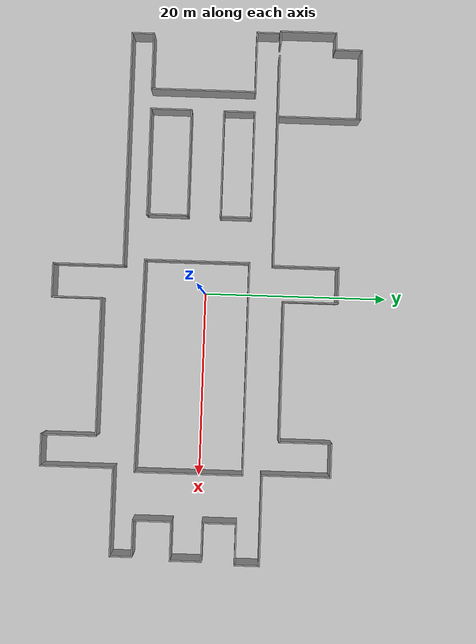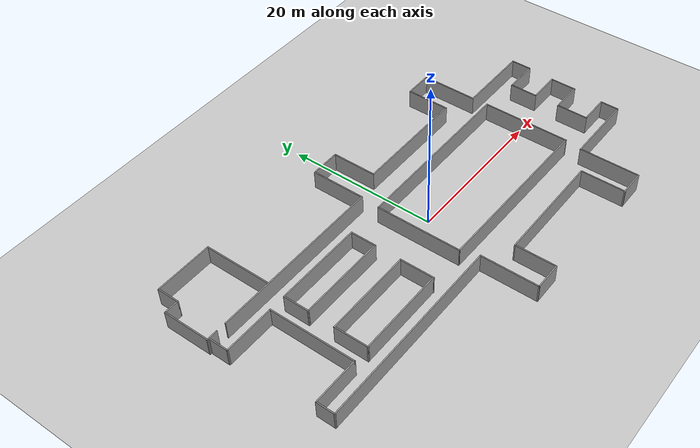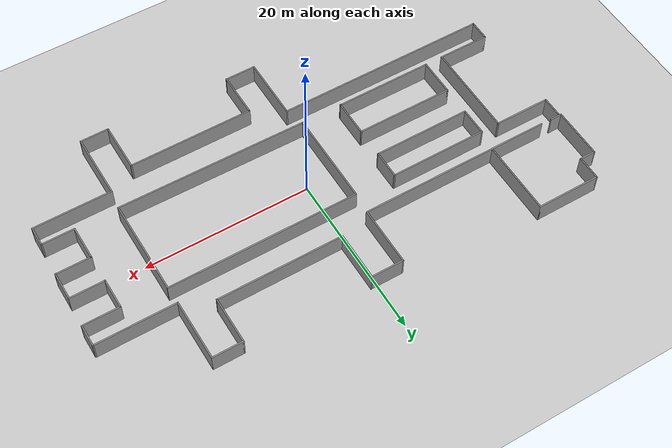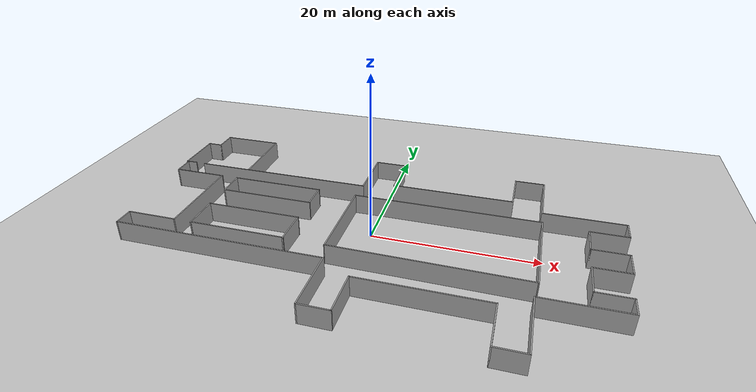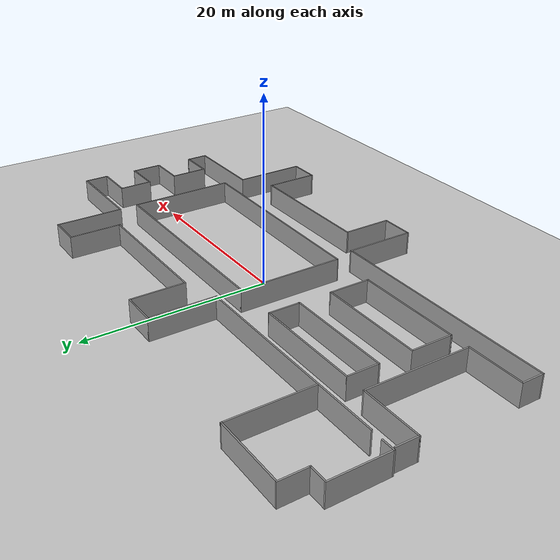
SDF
<?xml version='1.0' encoding='utf-8'?>
<sdf version="1.7">
  <world name="default">
    <light name="sun" type="directional">
      <cast_shadows>1</cast_shadows>
      <pose>0 0 10 0 -0 0</pose>
      <diffuse>0.8 0.8 0.8 1</diffuse>
      <specular>0.2 0.2 0.2 1</specular>
      <attenuation>
        <range>1000</range>
        <constant>0.9</constant>
        <linear>0.01</linear>
        <quadratic>0.001</quadratic>
      </attenuation>
      <direction>-0.5 0.1 -0.9</direction>
    </light>

    <include>
      <uri>model://ground_plane</uri>
    </include>

    <include>
      <uri>model://2101_wall</uri>
    </include>

    <gravity>0 0 -9.8</gravity>
    <atmosphere type="adiabatic" />
    <physics type="ode">
      <max_step_size>0.001</max_step_size>
      <real_time_factor>1</real_time_factor>
      <real_time_update_rate>1000</real_time_update_rate>
    </physics>
    <scene>
      <ambient>0.4 0.4 0.4 1</ambient>
      <background>0.7 0.7 0.7 1</background>
      <shadows>1</shadows>
    </scene>
  </world>
</sdf>

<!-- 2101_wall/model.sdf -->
<sdf version='1.7'>
  <model name='2101_wall'>
    <pose>-0.010242 -0.332797 0 0 -0 0</pose>
    <link name='Wall_0'>
      <collision name='Wall_0_Collision'>
        <geometry>
          <box>
            <size>1.5 0.15 2.5</size>
          </box>
        </geometry>
        <pose>0 0 1.25 0 -0 0</pose>
      </collision>
      <visual name='Wall_0_Visual'>
        <pose>0 0 1.25 0 -0 0</pose>
        <geometry>
          <box>
            <size>1.5 0.15 2.5</size>
          </box>
        </geometry>
        <material>
          <script>
            <uri>file://media/materials/scripts/gazebo.material</uri>
            <name>Gazebo/Grey</name>
          </script>
          <ambient>1 1 1 1</ambient>
        </material>
        <meta>
          <layer>0</layer>
        </meta>
      </visual>
      <pose>-28.3085 7.72241 0 0 -0 3.14159</pose>
    </link>
    <link name='Wall_1'>
      <collision name='Wall_1_Collision'>
        <geometry>
          <box>
            <size>6.25 0.15 2.5</size>
          </box>
        </geometry>
        <pose>0 0 1.25 0 -0 0</pose>
      </collision>
      <visual name='Wall_1_Visual'>
        <pose>0 0 1.25 0 -0 0</pose>
        <geometry>
          <box>
            <size>6.25 0.15 2.5</size>
          </box>
        </geometry>
        <material>
          <script>
            <uri>file://media/materials/scripts/gazebo.material</uri>
            <name>Gazebo/Grey</name>
          </script>
          <ambient>1 1 1 1</ambient>
        </material>
        <meta>
          <layer>0</layer>
        </meta>
      </visual>
      <pose>-28.9835 10.7724 0 0 -0 1.5708</pose>
    </link>
    <link name='Wall_10'>
      <collision name='Wall_10_Collision'>
        <geometry>
          <box>
            <size>6 0.15 2.5</size>
          </box>
        </geometry>
        <pose>0 0 1.25 0 -0 0</pose>
      </collision>
      <visual name='Wall_10_Visual'>
        <pose>0 0 1.25 0 -0 0</pose>
        <geometry>
          <box>
            <size>6 0.15 2.5</size>
          </box>
        </geometry>
        <material>
          <script>
            <uri>file://media/materials/scripts/gazebo.material</uri>
            <name>Gazebo/Grey</name>
          </script>
          <ambient>1 1 1 1</ambient>
        </material>
        <meta>
          <layer>0</layer>
        </meta>
      </visual>
      <pose>0.683549 11.8526 0 0 -0 -1.5708</pose>
    </link>
    <link name='Wall_11'>
      <collision name='Wall_11_Collision'>
        <geometry>
          <box>
            <size>15.25 0.15 2.5</size>
          </box>
        </geometry>
        <pose>0 0 1.25 0 -0 0</pose>
      </collision>
      <visual name='Wall_11_Visual'>
        <pose>0 0 1.25 0 -0 0</pose>
        <geometry>
          <box>
            <size>15.25 0.15 2.5</size>
          </box>
        </geometry>
        <material>
          <script>
            <uri>file://media/materials/scripts/gazebo.material</uri>
            <name>Gazebo/Grey</name>
          </script>
          <ambient>1 1 1 1</ambient>
        </material>
        <meta>
          <layer>0</layer>
        </meta>
      </visual>
      <pose>8.23355 8.92759 0 0 -0 0</pose>
    </link>
    <link name='Wall_12'>
      <collision name='Wall_12_Collision'>
        <geometry>
          <box>
            <size>5.75 0.15 2.5</size>
          </box>
        </geometry>
        <pose>0 0 1.25 0 -0 0</pose>
      </collision>
      <visual name='Wall_12_Visual'>
        <pose>0 0 1.25 0 -0 0</pose>
        <geometry>
          <box>
            <size>5.75 0.15 2.5</size>
          </box>
        </geometry>
        <material>
          <script>
            <uri>file://media/materials/scripts/gazebo.material</uri>
            <name>Gazebo/Grey</name>
          </script>
          <ambient>1 1 1 1</ambient>
        </material>
        <meta>
          <layer>0</layer>
        </meta>
      </visual>
      <pose>15.7835 11.7276 0 0 -0 1.5708</pose>
    </link>
    <link name='Wall_13'>
      <collision name='Wall_13_Collision'>
        <geometry>
          <box>
            <size>3.75 0.15 2.5</size>
          </box>
        </geometry>
        <pose>0 0 1.25 0 -0 0</pose>
      </collision>
      <visual name='Wall_13_Visual'>
        <pose>0 0 1.25 0 -0 0</pose>
        <geometry>
          <box>
            <size>3.75 0.15 2.5</size>
          </box>
        </geometry>
        <material>
          <script>
            <uri>file://media/materials/scripts/gazebo.material</uri>
            <name>Gazebo/Grey</name>
          </script>
          <ambient>1 1 1 1</ambient>
        </material>
        <meta>
          <layer>0</layer>
        </meta>
      </visual>
      <pose>17.5835 14.5276 0 0 -0 0</pose>
    </link>
    <link name='Wall_14'>
      <collision name='Wall_14_Collision'>
        <geometry>
          <box>
            <size>7.5 0.15 2.5</size>
          </box>
        </geometry>
        <pose>0 0 1.25 0 -0 0</pose>
      </collision>
      <visual name='Wall_14_Visual'>
        <pose>0 0 1.25 0 -0 0</pose>
        <geometry>
          <box>
            <size>7.5 0.15 2.5</size>
          </box>
        </geometry>
        <material>
          <script>
            <uri>file://media/materials/scripts/gazebo.material</uri>
            <name>Gazebo/Grey</name>
          </script>
          <ambient>1 1 1 1</ambient>
        </material>
        <meta>
          <layer>0</layer>
        </meta>
      </visual>
      <pose>19.3835 10.8526 0 0 -0 -1.5708</pose>
    </link>
    <link name='Wall_15'>
      <collision name='Wall_15_Collision'>
        <geometry>
          <box>
            <size>9.75 0.15 2.5</size>
          </box>
        </geometry>
        <pose>0 0 1.25 0 -0 0</pose>
      </collision>
      <visual name='Wall_15_Visual'>
        <pose>0 0 1.25 0 -0 0</pose>
        <geometry>
          <box>
            <size>9.75 0.15 2.5</size>
          </box>
        </geometry>
        <material>
          <script>
            <uri>file://media/materials/scripts/gazebo.material</uri>
            <name>Gazebo/Grey</name>
          </script>
          <ambient>1 1 1 1</ambient>
        </material>
        <meta>
          <layer>0</layer>
        </meta>
      </visual>
      <pose>24.1836 7.17759 0 0 -0 0</pose>
    </link>
    <link name='Wall_16'>
      <collision name='Wall_16_Collision'>
        <geometry>
          <box>
            <size>2.75 0.15 2.5</size>
          </box>
        </geometry>
        <pose>0 0 1.25 0 -0 0</pose>
      </collision>
      <visual name='Wall_16_Visual'>
        <pose>0 0 1.25 0 -0 0</pose>
        <geometry>
          <box>
            <size>2.75 0.15 2.5</size>
          </box>
        </geometry>
        <material>
          <script>
            <uri>file://media/materials/scripts/gazebo.material</uri>
            <name>Gazebo/Grey</name>
          </script>
          <ambient>1 1 1 1</ambient>
        </material>
        <meta>
          <layer>0</layer>
        </meta>
      </visual>
      <pose>28.9835 5.87759 0 0 -0 -1.5708</pose>
    </link>
    <link name='Wall_17'>
      <collision name='Wall_17_Collision'>
        <geometry>
          <box>
            <size>4.5 0.15 2.5</size>
          </box>
        </geometry>
        <pose>0 0 1.25 0 -0 0</pose>
      </collision>
      <visual name='Wall_17_Visual'>
        <pose>0 0 1.25 0 -0 0</pose>
        <geometry>
          <box>
            <size>4.5 0.15 2.5</size>
          </box>
        </geometry>
        <material>
          <script>
            <uri>file://media/materials/scripts/gazebo.material</uri>
            <name>Gazebo/Grey</name>
          </script>
          <ambient>1 1 1 1</ambient>
        </material>
        <meta>
          <layer>0</layer>
        </meta>
      </visual>
      <pose>26.8086 4.57759 0 0 -0 3.14159</pose>
    </link>
    <link name='Wall_18'>
      <collision name='Wall_18_Collision'>
        <geometry>
          <box>
            <size>3.75 0.15 2.5</size>
          </box>
        </geometry>
        <pose>0 0 1.25 0 -0 0</pose>
      </collision>
      <visual name='Wall_18_Visual'>
        <pose>0 0 1.25 0 -0 0</pose>
        <geometry>
          <box>
            <size>3.75 0.15 2.5</size>
          </box>
        </geometry>
        <material>
          <script>
            <uri>file://media/materials/scripts/gazebo.material</uri>
            <name>Gazebo/Grey</name>
          </script>
          <ambient>1 1 1 1</ambient>
        </material>
        <meta>
          <layer>0</layer>
        </meta>
      </visual>
      <pose>24.6335 2.77759 0 0 -0 -1.5708</pose>
    </link>
    <link name='Wall_19'>
      <collision name='Wall_19_Collision'>
        <geometry>
          <box>
            <size>4.25 0.15 2.5</size>
          </box>
        </geometry>
        <pose>0 0 1.25 0 -0 0</pose>
      </collision>
      <visual name='Wall_19_Visual'>
        <pose>0 0 1.25 0 -0 0</pose>
        <geometry>
          <box>
            <size>4.25 0.15 2.5</size>
          </box>
        </geometry>
        <material>
          <script>
            <uri>file://media/materials/scripts/gazebo.material</uri>
            <name>Gazebo/Grey</name>
          </script>
          <ambient>1 1 1 1</ambient>
        </material>
        <meta>
          <layer>0</layer>
        </meta>
      </visual>
      <pose>26.6836 0.977589 0 0 -0 0</pose>
    </link>
    <link name='Wall_2'>
      <collision name='Wall_2_Collision'>
        <geometry>
          <box>
            <size>2 0.15 2.5</size>
          </box>
        </geometry>
        <pose>0 0 1.25 0 -0 0</pose>
      </collision>
      <visual name='Wall_2_Visual'>
        <pose>0 0 1.25 0 -0 0</pose>
        <geometry>
          <box>
            <size>2 0.15 2.5</size>
          </box>
        </geometry>
        <material>
          <script>
            <uri>file://media/materials/scripts/gazebo.material</uri>
            <name>Gazebo/Grey</name>
          </script>
          <ambient>1 1 1 1</ambient>
        </material>
        <meta>
          <layer>0</layer>
        </meta>
      </visual>
      <pose>-28.0585 13.8224 0 0 -0 0</pose>
    </link>
    <link name='Wall_20'>
      <collision name='Wall_20_Collision'>
        <geometry>
          <box>
            <size>3.5 0.15 2.5</size>
          </box>
        </geometry>
        <pose>0 0 1.25 0 -0 0</pose>
      </collision>
      <visual name='Wall_20_Visual'>
        <pose>0 0 1.25 0 -0 0</pose>
        <geometry>
          <box>
            <size>3.5 0.15 2.5</size>
          </box>
        </geometry>
        <material>
          <script>
            <uri>file://media/materials/scripts/gazebo.material</uri>
            <name>Gazebo/Grey</name>
          </script>
          <ambient>1 1 1 1</ambient>
        </material>
        <meta>
          <layer>0</layer>
        </meta>
      </visual>
      <pose>28.7335 -0.697412 0 0 -0 -1.5708</pose>
    </link>
    <link name='Wall_21'>
      <collision name='Wall_21_Collision'>
        <geometry>
          <box>
            <size>4.25 0.15 2.5</size>
          </box>
        </geometry>
        <pose>0 0 1.25 0 -0 0</pose>
      </collision>
      <visual name='Wall_21_Visual'>
        <pose>0 0 1.25 0 -0 0</pose>
        <geometry>
          <box>
            <size>4.25 0.15 2.5</size>
          </box>
        </geometry>
        <material>
          <script>
            <uri>file://media/materials/scripts/gazebo.material</uri>
            <name>Gazebo/Grey</name>
          </script>
          <ambient>1 1 1 1</ambient>
        </material>
        <meta>
          <layer>0</layer>
        </meta>
      </visual>
      <pose>26.6836 -2.37241 0 0 -0 3.14159</pose>
    </link>
    <link name='Wall_22'>
      <collision name='Wall_22_Collision'>
        <geometry>
          <box>
            <size>4.25 0.15 2.5</size>
          </box>
        </geometry>
        <pose>0 0 1.25 0 -0 0</pose>
      </collision>
      <visual name='Wall_22_Visual'>
        <pose>0 0 1.25 0 -0 0</pose>
        <geometry>
          <box>
            <size>4.25 0.15 2.5</size>
          </box>
        </geometry>
        <material>
          <script>
            <uri>file://media/materials/scripts/gazebo.material</uri>
            <name>Gazebo/Grey</name>
          </script>
          <ambient>1 1 1 1</ambient>
        </material>
        <meta>
          <layer>0</layer>
        </meta>
      </visual>
      <pose>24.6335 -4.42241 0 0 -0 -1.5708</pose>
    </link>
    <link name='Wall_23'>
      <collision name='Wall_23_Collision'>
        <geometry>
          <box>
            <size>4 0.15 2.5</size>
          </box>
        </geometry>
        <pose>0 0 1.25 0 -0 0</pose>
      </collision>
      <visual name='Wall_23_Visual'>
        <pose>0 0 1.25 0 -0 0</pose>
        <geometry>
          <box>
            <size>4 0.15 2.5</size>
          </box>
        </geometry>
        <material>
          <script>
            <uri>file://media/materials/scripts/gazebo.material</uri>
            <name>Gazebo/Grey</name>
          </script>
          <ambient>1 1 1 1</ambient>
        </material>
        <meta>
          <layer>0</layer>
        </meta>
      </visual>
      <pose>26.5586 -6.47241 0 0 -0 0</pose>
    </link>
    <link name='Wall_24'>
      <collision name='Wall_24_Collision'>
        <geometry>
          <box>
            <size>2.5 0.15 2.5</size>
          </box>
        </geometry>
        <pose>0 0 1.25 0 -0 0</pose>
      </collision>
      <visual name='Wall_24_Visual'>
        <pose>0 0 1.25 0 -0 0</pose>
        <geometry>
          <box>
            <size>2.5 0.15 2.5</size>
          </box>
        </geometry>
        <material>
          <script>
            <uri>file://media/materials/scripts/gazebo.material</uri>
            <name>Gazebo/Grey</name>
          </script>
          <ambient>1 1 1 1</ambient>
        </material>
        <meta>
          <layer>0</layer>
        </meta>
      </visual>
      <pose>28.4835 -7.64741 0 0 -0 -1.5708</pose>
    </link>
    <link name='Wall_25'>
      <collision name='Wall_25_Collision'>
        <geometry>
          <box>
            <size>9.5 0.15 2.5</size>
          </box>
        </geometry>
        <pose>0 0 1.25 0 -0 0</pose>
      </collision>
      <visual name='Wall_25_Visual'>
        <pose>0 0 1.25 0 -0 0</pose>
        <geometry>
          <box>
            <size>9.5 0.15 2.5</size>
          </box>
        </geometry>
        <material>
          <script>
            <uri>file://media/materials/scripts/gazebo.material</uri>
            <name>Gazebo/Grey</name>
          </script>
          <ambient>1 1 1 1</ambient>
        </material>
        <meta>
          <layer>0</layer>
        </meta>
      </visual>
      <pose>23.8086 -8.82241 0 0 -0 3.14159</pose>
    </link>
    <link name='Wall_26'>
      <collision name='Wall_26_Collision'>
        <geometry>
          <box>
            <size>8 0.15 2.5</size>
          </box>
        </geometry>
        <pose>0 0 1.25 0 -0 0</pose>
      </collision>
      <visual name='Wall_26_Visual'>
        <pose>0 0 1.25 0 -0 0</pose>
        <geometry>
          <box>
            <size>8 0.15 2.5</size>
          </box>
        </geometry>
        <material>
          <script>
            <uri>file://media/materials/scripts/gazebo.material</uri>
            <name>Gazebo/Grey</name>
          </script>
          <ambient>1 1 1 1</ambient>
        </material>
        <meta>
          <layer>0</layer>
        </meta>
      </visual>
      <pose>19.1335 -12.7474 0 0 -0 -1.5708</pose>
    </link>
    <link name='Wall_27'>
      <collision name='Wall_27_Collision'>
        <geometry>
          <box>
            <size>3.5 0.15 2.5</size>
          </box>
        </geometry>
        <pose>0 0 1.25 0 -0 0</pose>
      </collision>
      <visual name='Wall_27_Visual'>
        <pose>0 0 1.25 0 -0 0</pose>
        <geometry>
          <box>
            <size>3.5 0.15 2.5</size>
          </box>
        </geometry>
        <material>
          <script>
            <uri>file://media/materials/scripts/gazebo.material</uri>
            <name>Gazebo/Grey</name>
          </script>
          <ambient>1 1 1 1</ambient>
        </material>
        <meta>
          <layer>0</layer>
        </meta>
      </visual>
      <pose>17.4585 -16.6724 0 0 -0 3.14159</pose>
    </link>
    <link name='Wall_28'>
      <collision name='Wall_28_Collision'>
        <geometry>
          <box>
            <size>6 0.15 2.5</size>
          </box>
        </geometry>
        <pose>0 0 1.25 0 -0 0</pose>
      </collision>
      <visual name='Wall_28_Visual'>
        <pose>0 0 1.25 0 -0 0</pose>
        <geometry>
          <box>
            <size>6 0.15 2.5</size>
          </box>
        </geometry>
        <material>
          <script>
            <uri>file://media/materials/scripts/gazebo.material</uri>
            <name>Gazebo/Grey</name>
          </script>
          <ambient>1 1 1 1</ambient>
        </material>
        <meta>
          <layer>0</layer>
        </meta>
      </visual>
      <pose>15.7835 -13.7474 0 0 -0 1.5708</pose>
    </link>
    <link name='Wall_29'>
      <collision name='Wall_29_Collision'>
        <geometry>
          <box>
            <size>15 0.15 2.5</size>
          </box>
        </geometry>
        <pose>0 0 1.25 0 -0 0</pose>
      </collision>
      <visual name='Wall_29_Visual'>
        <pose>0 0 1.25 0 -0 0</pose>
        <geometry>
          <box>
            <size>15 0.15 2.5</size>
          </box>
        </geometry>
        <material>
          <script>
            <uri>file://media/materials/scripts/gazebo.material</uri>
            <name>Gazebo/Grey</name>
          </script>
          <ambient>1 1 1 1</ambient>
        </material>
        <meta>
          <layer>0</layer>
        </meta>
      </visual>
      <pose>8.35855 -10.8224 0 0 -0 3.14159</pose>
    </link>
    <link name='Wall_3'>
      <collision name='Wall_3_Collision'>
        <geometry>
          <box>
            <size>3 0.15 2.5</size>
          </box>
        </geometry>
        <pose>0 0 1.25 0 -0 0</pose>
      </collision>
      <visual name='Wall_3_Visual'>
        <pose>0 0 1.25 0 -0 0</pose>
        <geometry>
          <box>
            <size>3 0.15 2.5</size>
          </box>
        </geometry>
        <material>
          <script>
            <uri>file://media/materials/scripts/gazebo.material</uri>
            <name>Gazebo/Grey</name>
          </script>
          <ambient>1 1 1 1</ambient>
        </material>
        <meta>
          <layer>0</layer>
        </meta>
      </visual>
      <pose>-27.1335 15.2474 0 0 -0 1.5708</pose>
    </link>
    <link name='Wall_30'>
      <collision name='Wall_30_Collision'>
        <geometry>
          <box>
            <size>5.5 0.15 2.5</size>
          </box>
        </geometry>
        <pose>0 0 1.25 0 -0 0</pose>
      </collision>
      <visual name='Wall_30_Visual'>
        <pose>0 0 1.25 0 -0 0</pose>
        <geometry>
          <box>
            <size>5.5 0.15 2.5</size>
          </box>
        </geometry>
        <material>
          <script>
            <uri>file://media/materials/scripts/gazebo.material</uri>
            <name>Gazebo/Grey</name>
          </script>
          <ambient>1 1 1 1</ambient>
        </material>
        <meta>
          <layer>0</layer>
        </meta>
      </visual>
      <pose>0.933549 -13.4974 0 0 -0 -1.5708</pose>
    </link>
    <link name='Wall_31'>
      <collision name='Wall_31_Collision'>
        <geometry>
          <box>
            <size>3.75 0.15 2.5</size>
          </box>
        </geometry>
        <pose>0 0 1.25 0 -0 0</pose>
      </collision>
      <visual name='Wall_31_Visual'>
        <pose>0 0 1.25 0 -0 0</pose>
        <geometry>
          <box>
            <size>3.75 0.15 2.5</size>
          </box>
        </geometry>
        <material>
          <script>
            <uri>file://media/materials/scripts/gazebo.material</uri>
            <name>Gazebo/Grey</name>
          </script>
          <ambient>1 1 1 1</ambient>
        </material>
        <meta>
          <layer>0</layer>
        </meta>
      </visual>
      <pose>-0.866451 -16.1724 0 0 -0 3.14159</pose>
    </link>
    <link name='Wall_32'>
      <collision name='Wall_32_Collision'>
        <geometry>
          <box>
            <size>7.75 0.15 2.5</size>
          </box>
        </geometry>
        <pose>0 0 1.25 0 -0 0</pose>
      </collision>
      <visual name='Wall_32_Visual'>
        <pose>0 0 1.25 0 -0 0</pose>
        <geometry>
          <box>
            <size>7.75 0.15 2.5</size>
          </box>
        </geometry>
        <material>
          <script>
            <uri>file://media/materials/scripts/gazebo.material</uri>
            <name>Gazebo/Grey</name>
          </script>
          <ambient>1 1 1 1</ambient>
        </material>
        <meta>
          <layer>0</layer>
        </meta>
      </visual>
      <pose>-2.66645 -12.3724 0 0 -0 1.5708</pose>
    </link>
    <link name='Wall_33'>
      <collision name='Wall_33_Collision'>
        <geometry>
          <box>
            <size>25.75 0.15 2.5</size>
          </box>
        </geometry>
        <pose>0 0 1.25 0 -0 0</pose>
      </collision>
      <visual name='Wall_33_Visual'>
        <pose>0 0 1.25 0 -0 0</pose>
        <geometry>
          <box>
            <size>25.75 0.15 2.5</size>
          </box>
        </geometry>
        <material>
          <script>
            <uri>file://media/materials/scripts/gazebo.material</uri>
            <name>Gazebo/Grey</name>
          </script>
          <ambient>1 1 1 1</ambient>
        </material>
        <meta>
          <layer>0</layer>
        </meta>
      </visual>
      <pose>-15.4665 -8.57241 0 0 -0 3.14159</pose>
    </link>
    <link name='Wall_34'>
      <collision name='Wall_34_Collision'>
        <geometry>
          <box>
            <size>2.5 0.15 2.5</size>
          </box>
        </geometry>
        <pose>0 0 1.25 0 -0 0</pose>
      </collision>
      <visual name='Wall_34_Visual'>
        <pose>0 0 1.25 0 -0 0</pose>
        <geometry>
          <box>
            <size>2.5 0.15 2.5</size>
          </box>
        </geometry>
        <material>
          <script>
            <uri>file://media/materials/scripts/gazebo.material</uri>
            <name>Gazebo/Grey</name>
          </script>
          <ambient>1 1 1 1</ambient>
        </material>
        <meta>
          <layer>0</layer>
        </meta>
      </visual>
      <pose>-28.2665 -7.39741 0 0 -0 1.5708</pose>
    </link>
    <link name='Wall_35'>
      <collision name='Wall_35_Collision'>
        <geometry>
          <box>
            <size>6.25 0.15 2.5</size>
          </box>
        </geometry>
        <pose>0 0 1.25 0 -0 0</pose>
      </collision>
      <visual name='Wall_35_Visual'>
        <pose>0 0 1.25 0 -0 0</pose>
        <geometry>
          <box>
            <size>6.25 0.15 2.5</size>
          </box>
        </geometry>
        <material>
          <script>
            <uri>file://media/materials/scripts/gazebo.material</uri>
            <name>Gazebo/Grey</name>
          </script>
          <ambient>1 1 1 1</ambient>
        </material>
        <meta>
          <layer>0</layer>
        </meta>
      </visual>
      <pose>-25.2165 -6.22241 0 0 -0 0</pose>
    </link>
    <link name='Wall_36'>
      <collision name='Wall_36_Collision'>
        <geometry>
          <box>
            <size>11.5 0.15 2.5</size>
          </box>
        </geometry>
        <pose>0 0 1.25 0 -0 0</pose>
      </collision>
      <visual name='Wall_36_Visual'>
        <pose>0 0 1.25 0 -0 0</pose>
        <geometry>
          <box>
            <size>11.5 0.15 2.5</size>
          </box>
        </geometry>
        <material>
          <script>
            <uri>file://media/materials/scripts/gazebo.material</uri>
            <name>Gazebo/Grey</name>
          </script>
          <ambient>1 1 1 1</ambient>
        </material>
        <meta>
          <layer>0</layer>
        </meta>
      </visual>
      <pose>-22.1665 -0.547412 0 0 -0 1.5708</pose>
    </link>
    <link name='Wall_37'>
      <collision name='Wall_37_Collision'>
        <geometry>
          <box>
            <size>6.75 0.15 2.5</size>
          </box>
        </geometry>
        <pose>0 0 1.25 0 -0 0</pose>
      </collision>
      <visual name='Wall_37_Visual'>
        <pose>0 0 1.25 0 -0 0</pose>
        <geometry>
          <box>
            <size>6.75 0.15 2.5</size>
          </box>
        </geometry>
        <material>
          <script>
            <uri>file://media/materials/scripts/gazebo.material</uri>
            <name>Gazebo/Grey</name>
          </script>
          <ambient>1 1 1 1</ambient>
        </material>
        <meta>
          <layer>0</layer>
        </meta>
      </visual>
      <pose>-25.4665 5.12759 0 0 -0 3.14159</pose>
    </link>
    <link name='Wall_38'>
      <collision name='Wall_38_Collision'>
        <geometry>
          <box>
            <size>2.5 0.15 2.5</size>
          </box>
        </geometry>
        <pose>0 0 1.25 0 -0 0</pose>
      </collision>
      <visual name='Wall_38_Visual'>
        <pose>0 0 1.25 0 -0 0</pose>
        <geometry>
          <box>
            <size>2.5 0.15 2.5</size>
          </box>
        </geometry>
        <material>
          <script>
            <uri>file://media/materials/scripts/gazebo.material</uri>
            <name>Gazebo/Grey</name>
          </script>
          <ambient>1 1 1 1</ambient>
        </material>
        <meta>
          <layer>0</layer>
        </meta>
      </visual>
      <pose>-28.7665 6.30259 0 0 -0 1.5708</pose>
    </link>
    <link name='Wall_4'>
      <collision name='Wall_4_Collision'>
        <geometry>
          <box>
            <size>7.75 0.15 2.5</size>
          </box>
        </geometry>
        <pose>0 0 1.25 0 -0 0</pose>
      </collision>
      <visual name='Wall_4_Visual'>
        <pose>0 0 1.25 0 -0 0</pose>
        <geometry>
          <box>
            <size>7.75 0.15 2.5</size>
          </box>
        </geometry>
        <material>
          <script>
            <uri>file://media/materials/scripts/gazebo.material</uri>
            <name>Gazebo/Grey</name>
          </script>
          <ambient>1 1 1 1</ambient>
        </material>
        <meta>
          <layer>0</layer>
        </meta>
      </visual>
      <pose>-23.3335 16.6724 0 0 -0 0</pose>
    </link>
    <link name='Wall_40'>
      <collision name='Wall_40_Collision'>
        <geometry>
          <box>
            <size>11.75 0.15 2.5</size>
          </box>
        </geometry>
        <pose>0 0 1.25 0 -0 0</pose>
      </collision>
      <visual name='Wall_40_Visual'>
        <pose>0 0 1.25 0 -0 0</pose>
        <geometry>
          <box>
            <size>11.75 0.15 2.5</size>
          </box>
        </geometry>
        <material>
          <script>
            <uri>file://media/materials/scripts/gazebo.material</uri>
            <name>Gazebo/Grey</name>
          </script>
          <ambient>1 1 1 1</ambient>
        </material>
        <meta>
          <layer>0</layer>
        </meta>
      </visual>
      <pose>-14.128 5.12978 0 0 -0 0</pose>
    </link>
    <link name='Wall_41'>
      <collision name='Wall_41_Collision'>
        <geometry>
          <box>
            <size>3.5 0.15 2.5</size>
          </box>
        </geometry>
        <pose>0 0 1.25 0 -0 0</pose>
      </collision>
      <visual name='Wall_41_Visual'>
        <pose>0 0 1.25 0 -0 0</pose>
        <geometry>
          <box>
            <size>3.5 0.15 2.5</size>
          </box>
        </geometry>
        <material>
          <script>
            <uri>file://media/materials/scripts/gazebo.material</uri>
            <name>Gazebo/Grey</name>
          </script>
          <ambient>1 1 1 1</ambient>
        </material>
        <meta>
          <layer>0</layer>
        </meta>
      </visual>
      <pose>-8.32804 3.45478 0 0 -0 -1.5708</pose>
    </link>
    <link name='Wall_42'>
      <collision name='Wall_42_Collision'>
        <geometry>
          <box>
            <size>11.75 0.15 2.5</size>
          </box>
        </geometry>
        <pose>0 0 1.25 0 -0 0</pose>
      </collision>
      <visual name='Wall_42_Visual'>
        <pose>0 0 1.25 0 -0 0</pose>
        <geometry>
          <box>
            <size>11.75 0.15 2.5</size>
          </box>
        </geometry>
        <material>
          <script>
            <uri>file://media/materials/scripts/gazebo.material</uri>
            <name>Gazebo/Grey</name>
          </script>
          <ambient>1 1 1 1</ambient>
        </material>
        <meta>
          <layer>0</layer>
        </meta>
      </visual>
      <pose>-14.128 1.77978 0 0 -0 3.14159</pose>
    </link>
    <link name='Wall_43'>
      <collision name='Wall_43_Collision'>
        <geometry>
          <box>
            <size>3.5 0.15 2.5</size>
          </box>
        </geometry>
        <pose>0 0 1.25 0 -0 0</pose>
      </collision>
      <visual name='Wall_43_Visual'>
        <pose>0 0 1.25 0 -0 0</pose>
        <geometry>
          <box>
            <size>3.5 0.15 2.5</size>
          </box>
        </geometry>
        <material>
          <script>
            <uri>file://media/materials/scripts/gazebo.material</uri>
            <name>Gazebo/Grey</name>
          </script>
          <ambient>1 1 1 1</ambient>
        </material>
        <meta>
          <layer>0</layer>
        </meta>
      </visual>
      <pose>-19.928 3.45478 0 0 -0 1.5708</pose>
    </link>
    <link name='Wall_45'>
      <collision name='Wall_45_Collision'>
        <geometry>
          <box>
            <size>11.75 0.15 2.5</size>
          </box>
        </geometry>
        <pose>0 0 1.25 0 -0 0</pose>
      </collision>
      <visual name='Wall_45_Visual'>
        <pose>0 0 1.25 0 -0 0</pose>
        <geometry>
          <box>
            <size>11.75 0.15 2.5</size>
          </box>
        </geometry>
        <material>
          <script>
            <uri>file://media/materials/scripts/gazebo.material</uri>
            <name>Gazebo/Grey</name>
          </script>
          <ambient>1 1 1 1</ambient>
        </material>
        <meta>
          <layer>0</layer>
        </meta>
      </visual>
      <pose>-14.1579 -1.79677 0 0 -0 0</pose>
    </link>
    <link name='Wall_46'>
      <collision name='Wall_46_Collision'>
        <geometry>
          <box>
            <size>4.59696 0.15 2.5</size>
          </box>
        </geometry>
        <pose>0 0 1.25 0 -0 0</pose>
      </collision>
      <visual name='Wall_46_Visual'>
        <pose>0 0 1.25 0 -0 0</pose>
        <geometry>
          <box>
            <size>4.59696 0.15 2.5</size>
          </box>
        </geometry>
        <material>
          <script>
            <uri>file://media/materials/scripts/gazebo.material</uri>
            <name>Gazebo/Grey</name>
          </script>
          <ambient>1 1 1 1</ambient>
        </material>
        <meta>
          <layer>0</layer>
        </meta>
      </visual>
      <pose>-8.35793 -4.02025 0 0 -0 -1.5708</pose>
    </link>
    <link name='Wall_47'>
      <collision name='Wall_47_Collision'>
        <geometry>
          <box>
            <size>11.75 0.15 2.5</size>
          </box>
        </geometry>
        <pose>0 0 1.25 0 -0 0</pose>
      </collision>
      <visual name='Wall_47_Visual'>
        <pose>0 0 1.25 0 -0 0</pose>
        <geometry>
          <box>
            <size>11.75 0.15 2.5</size>
          </box>
        </geometry>
        <material>
          <script>
            <uri>file://media/materials/scripts/gazebo.material</uri>
            <name>Gazebo/Grey</name>
          </script>
          <ambient>1 1 1 1</ambient>
        </material>
        <meta>
          <layer>0</layer>
        </meta>
      </visual>
      <pose>-14.1579 -6.2206 0 0 -0 3.14159</pose>
    </link>
    <link name='Wall_48'>
      <collision name='Wall_48_Collision'>
        <geometry>
          <box>
            <size>4.59696 0.15 2.5</size>
          </box>
        </geometry>
        <pose>0 0 1.25 0 -0 0</pose>
      </collision>
      <visual name='Wall_48_Visual'>
        <pose>0 0 1.25 0 -0 0</pose>
        <geometry>
          <box>
            <size>4.59696 0.15 2.5</size>
          </box>
        </geometry>
        <material>
          <script>
            <uri>file://media/materials/scripts/gazebo.material</uri>
            <name>Gazebo/Grey</name>
          </script>
          <ambient>1 1 1 1</ambient>
        </material>
        <meta>
          <layer>0</layer>
        </meta>
      </visual>
      <pose>-19.9579 -4.02025 0 0 -0 1.5708</pose>
    </link>
    <link name='Wall_5'>
      <collision name='Wall_5_Collision'>
        <geometry>
          <box>
            <size>9 0.15 2.5</size>
          </box>
        </geometry>
        <pose>0 0 1.25 0 -0 0</pose>
      </collision>
      <visual name='Wall_5_Visual'>
        <pose>0 0 1.25 0 -0 0</pose>
        <geometry>
          <box>
            <size>9 0.15 2.5</size>
          </box>
        </geometry>
        <material>
          <script>
            <uri>file://media/materials/scripts/gazebo.material</uri>
            <name>Gazebo/Grey</name>
          </script>
          <ambient>1 1 1 1</ambient>
        </material>
        <meta>
          <layer>0</layer>
        </meta>
      </visual>
      <pose>-19.5335 12.2474 0 0 -0 -1.5708</pose>
    </link>
    <link name='Wall_50'>
      <collision name='Wall_50_Collision'>
        <geometry>
          <box>
            <size>23 0.15 2.5</size>
          </box>
        </geometry>
        <pose>0 0 1.25 0 -0 0</pose>
      </collision>
      <visual name='Wall_50_Visual'>
        <pose>0 0 1.25 0 -0 0</pose>
        <geometry>
          <box>
            <size>23 0.15 2.5</size>
          </box>
        </geometry>
        <material>
          <script>
            <uri>file://media/materials/scripts/gazebo.material</uri>
            <name>Gazebo/Grey</name>
          </script>
          <ambient>1 1 1 1</ambient>
        </material>
        <meta>
          <layer>0</layer>
        </meta>
      </visual>
      <pose>8.04025 5.08796 0 0 -0 0</pose>
    </link>
    <link name='Wall_51'>
      <collision name='Wall_51_Collision'>
        <geometry>
          <box>
            <size>11.75 0.15 2.5</size>
          </box>
        </geometry>
        <pose>0 0 1.25 0 -0 0</pose>
      </collision>
      <visual name='Wall_51_Visual'>
        <pose>0 0 1.25 0 -0 0</pose>
        <geometry>
          <box>
            <size>11.75 0.15 2.5</size>
          </box>
        </geometry>
        <material>
          <script>
            <uri>file://media/materials/scripts/gazebo.material</uri>
            <name>Gazebo/Grey</name>
          </script>
          <ambient>1 1 1 1</ambient>
        </material>
        <meta>
          <layer>0</layer>
        </meta>
      </visual>
      <pose>19.4652 -0.712044 0 0 -0 -1.5708</pose>
    </link>
    <link name='Wall_52'>
      <collision name='Wall_52_Collision'>
        <geometry>
          <box>
            <size>23.0014 0.15 2.5</size>
          </box>
        </geometry>
        <pose>0 0 1.25 0 -0 0</pose>
      </collision>
      <visual name='Wall_52_Visual'>
        <pose>0 0 1.25 0 -0 0</pose>
        <geometry>
          <box>
            <size>23.0014 0.15 2.5</size>
          </box>
        </geometry>
        <material>
          <script>
            <uri>file://media/materials/scripts/gazebo.material</uri>
            <name>Gazebo/Grey</name>
          </script>
          <ambient>1 1 1 1</ambient>
        </material>
        <meta>
          <layer>0</layer>
        </meta>
      </visual>
      <pose>8.04025 -6.38704 0 0 -0 3.13065</pose>
    </link>
    <link name='Wall_53'>
      <collision name='Wall_53_Collision'>
        <geometry>
          <box>
            <size>11.5 0.15 2.5</size>
          </box>
        </geometry>
        <pose>0 0 1.25 0 -0 0</pose>
      </collision>
      <visual name='Wall_53_Visual'>
        <pose>0 0 1.25 0 -0 0</pose>
        <geometry>
          <box>
            <size>11.5 0.15 2.5</size>
          </box>
        </geometry>
        <material>
          <script>
            <uri>file://media/materials/scripts/gazebo.material</uri>
            <name>Gazebo/Grey</name>
          </script>
          <ambient>1 1 1 1</ambient>
        </material>
        <meta>
          <layer>0</layer>
        </meta>
      </visual>
      <pose>-3.38475 -0.587044 0 0 -0 1.5708</pose>
    </link>
    <link name='Wall_7'>
      <collision name='Wall_7_Collision'>
        <geometry>
          <box>
            <size>23.25 0.15 2.5</size>
          </box>
        </geometry>
        <pose>0 0 1.25 0 -0 0</pose>
      </collision>
      <visual name='Wall_7_Visual'>
        <pose>0 0 1.25 0 -0 0</pose>
        <geometry>
          <box>
            <size>23.25 0.15 2.5</size>
          </box>
        </geometry>
        <material>
          <script>
            <uri>file://media/materials/scripts/gazebo.material</uri>
            <name>Gazebo/Grey</name>
          </script>
          <ambient>1 1 1 1</ambient>
        </material>
        <meta>
          <layer>0</layer>
        </meta>
      </visual>
      <pose>-14.7165 7.67759 0 0 -0 0</pose>
    </link>
    <link name='Wall_8'>
      <collision name='Wall_8_Collision'>
        <geometry>
          <box>
            <size>7.25 0.15 2.5</size>
          </box>
        </geometry>
        <pose>0 0 1.25 0 -0 0</pose>
      </collision>
      <visual name='Wall_8_Visual'>
        <pose>0 0 1.25 0 -0 0</pose>
        <geometry>
          <box>
            <size>7.25 0.15 2.5</size>
          </box>
        </geometry>
        <material>
          <script>
            <uri>file://media/materials/scripts/gazebo.material</uri>
            <name>Gazebo/Grey</name>
          </script>
          <ambient>1 1 1 1</ambient>
        </material>
        <meta>
          <layer>0</layer>
        </meta>
      </visual>
      <pose>-3.16645 11.2276 0 0 -0 1.5708</pose>
    </link>
    <link name='Wall_9'>
      <collision name='Wall_9_Collision'>
        <geometry>
          <box>
            <size>4 0.15 2.5</size>
          </box>
        </geometry>
        <pose>0 0 1.25 0 -0 0</pose>
      </collision>
      <visual name='Wall_9_Visual'>
        <pose>0 0 1.25 0 -0 0</pose>
        <geometry>
          <box>
            <size>4 0.15 2.5</size>
          </box>
        </geometry>
        <material>
          <script>
            <uri>file://media/materials/scripts/gazebo.material</uri>
            <name>Gazebo/Grey</name>
          </script>
          <ambient>1 1 1 1</ambient>
        </material>
        <meta>
          <layer>0</layer>
        </meta>
      </visual>
      <pose>-1.24145 14.7776 0 0 -0 0</pose>
    </link>
    <static>1</static>
  </model>
</sdf>
